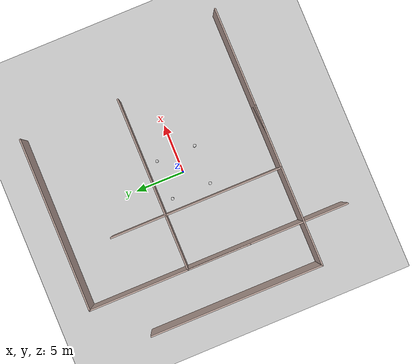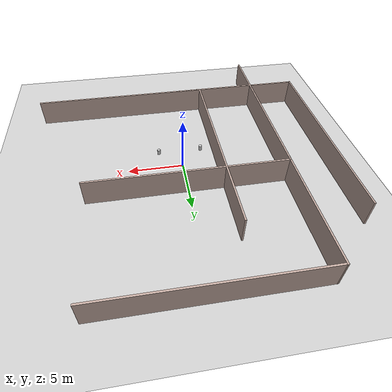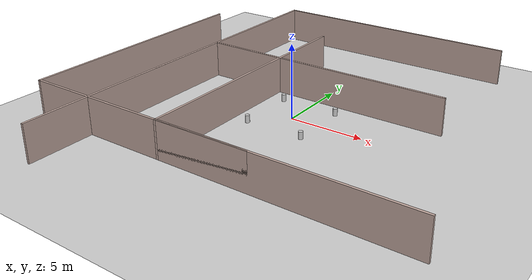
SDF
<?xml version="1.0" ?>
<sdf version="1.5">
  <world name="my_world">
    <include>
      <uri>model://ground_plane</uri>
    </include>

    <!-- Walls -->
    <include>
      <uri>model://wall</uri>
      <pose>0 5 0 0 0 0</pose>
    </include>
    <include>
      <uri>model://wall</uri>
      <pose>0 -5 0 0 0 0</pose>
    </include>
    <include>
      <uri>model://wall</uri>
      <pose>5 0 0 0 0 1.5708</pose>
    </include>
    <include>
      <uri>model://wall</uri>
      <pose>-5 0 0 0 0 1.5708</pose>
    </include>

    <!-- Obstacles -->
    <include>
      <uri>model://obstacle</uri>
      <pose>2 2 0 0 0 0</pose>
    </include>
    <include>
      <uri>model://obstacle</uri>
      <pose>-2 2 0 0 0 0</pose>
    </include>
    <include>
      <uri>model://obstacle</uri>
      <pose>2 -2 0 0 0 0</pose>
    </include>
    <include>
      <uri>model://obstacle</uri>
      <pose>-2 -2 0 0 0 0</pose>
    </include>
  </world>
</sdf>

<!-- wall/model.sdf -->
<sdf version='1.6'>
  <model name='wall'>
    <pose frame=''>-1.26581 1.80502 0 0 -0 0</pose>
    <link name='Wall_0'>
      <collision name='Wall_0_Collision'>
        <geometry>
          <box>
            <size>16.5 0.15 2.5</size>
          </box>
        </geometry>
        <pose frame=''>0 0 1.25 0 -0 0</pose>
      </collision>
      <visual name='Wall_0_Visual'>
        <pose frame=''>0 0 1.25 0 -0 0</pose>
        <geometry>
          <box>
            <size>16.5 0.15 2.5</size>
          </box>
        </geometry>
        <material>
          <script>
            <uri>file://media/materials/scripts/gazebo.material</uri>
            <name>Gazebo/Grey</name>
          </script>
          <ambient>0.760784 0.662745 0.627451 1</ambient>
        </material>
        <meta>
          <layer>0</layer>
        </meta>
      </visual>
      <pose frame=''>-8.71419 -1.8e-05 0 0 0 -1.5708</pose>
    </link>
    <link name='Wall_2'>
      <collision name='Wall_2_Collision'>
        <geometry>
          <box>
            <size>17.5784 0.15 2.5</size>
          </box>
        </geometry>
        <pose frame=''>0 0 1.25 0 -0 0</pose>
      </collision>
      <visual name='Wall_2_Visual'>
        <pose frame=''>0 0 1.25 0 -0 0</pose>
        <geometry>
          <box>
            <size>17.5784 0.15 2.5</size>
          </box>
        </geometry>
        <material>
          <script>
            <uri>file://media/materials/scripts/gazebo.material</uri>
            <name>Gazebo/Grey</name>
          </script>
          <ambient>0.760784 0.662745 0.627451 1</ambient>
        </material>
        <meta>
          <layer>0</layer>
        </meta>
      </visual>
      <pose frame=''>0 8.17066 0 0 0 -0.000496</pose>
    </link>
    <static>1</static>
  </model>
</sdf>

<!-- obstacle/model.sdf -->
<sdf version='1.6'>
  <model name='obstacle'>
    <pose frame=''>0 0 0 0 0 0</pose>
    <link name='cylinder'>
      <collision name='collision'>
        <pose>0 0 0.25 0 0 0</pose>
        <geometry>
          <cylinder>
            <radius>0.15</radius>
            <length>0.5</length>
          </cylinder>
        </geometry>
      </collision>
      <visual name='visual'>
        <pose>0 0 0.25 0 0 0</pose>
        <geometry>
          <cylinder>
            <radius>0.15</radius>
            <length>0.5</length>
          </cylinder>
        </geometry>
        <material>
          <ambient>0.8 0.8 0.8 1</ambient>
          <diffuse>0.8 0.8 0.8 1</diffuse>
        </material>
      </visual>
    </link>
    <static>false</static>
  </model>
</sdf>
